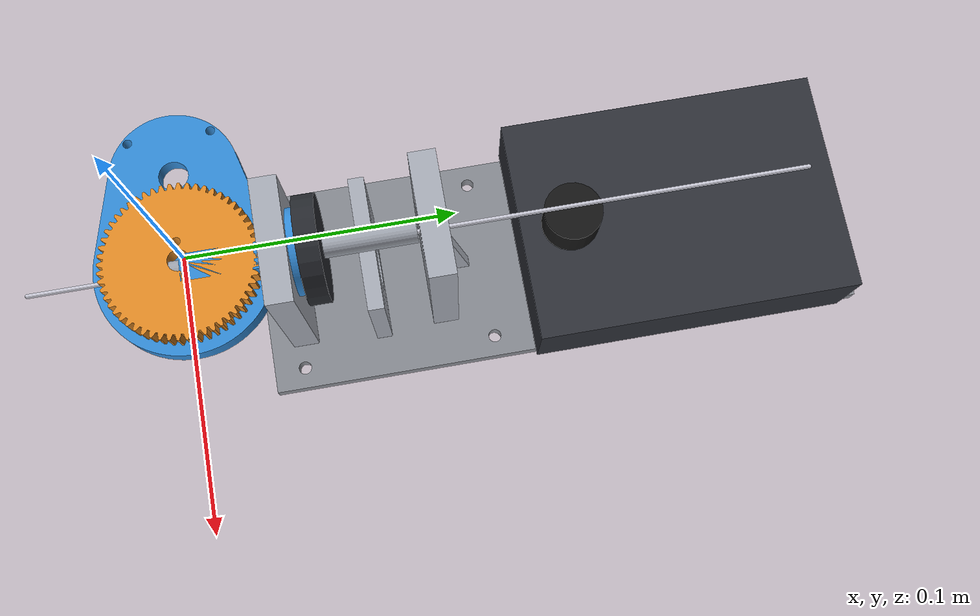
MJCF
<mujoco model="wirebender">
  <!-- Generated by sim/make_mjcf.py. Bending head = real meshes; rest = rough primitives. -->
  <compiler angle="degree" meshdir="meshes" autolimits="true" inertiafromgeom="true"/>
  <option gravity="0 0 0" integrator="implicitfast"/>

  <visual>
    <global offwidth="1280" offheight="960" azimuth="120" elevation="-20"/>
    <quality shadowsize="2048"/>
    <headlight diffuse="0.6 0.6 0.6" ambient="0.4 0.4 0.4"/>
  </visual>
  <statistic center="0.00635 0.1925 0.0055" extent="0.25"/>

  <default>
    <joint damping="0.5"/>
    <position kp="8" forcerange="-80 80"/>
    <!-- collisions off: kinematic visualization -->
    <geom density="1000" contype="0" conaffinity="0"/>
  </default>

  <asset>
    <texture type="skybox" builtin="gradient" rgb1="0.25 0.3 0.4" rgb2="0.05 0.06 0.1"
             width="512" height="512"/>
    <texture name="grid" type="2d" builtin="checker" rgb1="0.2 0.2 0.2" rgb2="0.3 0.3 0.3"
             width="512" height="512"/>
    <material name="grid" texture="grid" texrepeat="10 10" reflectance="0.1"/>
    <mesh name="motor" file="motor.stl" scale="0.001 0.001 0.001"/>
    <mesh name="bender-head" file="bender-head.stl" scale="0.001 0.001 0.001"/>
    <mesh name="motor-flange" file="motor-flange.stl" scale="0.001 0.001 0.001"/>
    <mesh name="bracket" file="bracket.stl" scale="0.001 0.001 0.001"/>
    <mesh name="head" file="head.stl" scale="0.001 0.001 0.001"/>
    <mesh name="bend_gear" file="bend_gear.stl" scale="0.001 0.001 0.001"/>
  </asset>

  <worldbody>
    <light pos="0.2 0.1 0.5" dir="-0.3 -0.1 -1" diffuse="0.9 0.9 0.9"/>
    <geom name="floor" type="plane" size="1 1 0.05" pos="0 0.1925 -0.044"
          material="grid" contype="1" conaffinity="1"/>

    <!-- ───────── static frame / decoration ───────── -->
    <body name="frame">
      <!-- printed base/bracket (base-bracket.scad) -->
      <geom type="mesh" mesh="bracket" pos="0.00635 0.035 -0.0445" quat="0.707107 0 0 0.707107" rgba="0.66 0.68 0.72 1"/>
      <!-- feeder body (1KGSSJ-B): flat on the base -->
      <geom type="box" pos="0.00635 0.185 -0.0295" size="0.0425 0.061 0.015" rgba="0.18 0.19 0.22 1"/>
      <!-- feeder motor dropping ~48mm through the base pocket -->
      <geom type="cylinder" fromto="0.00635 0.20525 -0.0445 0.00635 0.20525 -0.0925" size="0.0265" rgba="0.25 0.27 0.30 1"/>
      <!-- tension knob over the top -->
      <geom type="cylinder" fromto="0.00635 0.143 -0.0145 0.00635 0.143 -0.0005" size="0.011" rgba="0.08 0.08 0.08 1"/>
    </body>

    <!-- ───────── Axis 1: wire feed (slide along Y) ───────── -->
    <body name="wire" pos="0.00635 0 0.0055">
      <joint name="feed" type="slide" axis="0 1 0" range="-0.12 0.04"/>
      <geom type="capsule" fromto="0 -0.055 0  0 0.23 0"
            size="0.000815" rgba="0.80 0.80 0.85 1"/>
    </body>

    <!-- ───────── Axis 2: feed-tube rotation (bend direction) ───────── -->
    <body name="tube" pos="0 0 0">
      <joint name="tube_rot" type="hinge" axis="0 1 0" pos="0.00635 0 0.0055"
             range="-90 90"/>
      <!-- feed tube -->
      <geom type="cylinder" fromto="0.00635 -0.01 0.0055 0.00635 0.085 0.0055" size="0.004" rgba="0.62 0.64 0.68 1"/>
      <!-- drive pulley -->
      <geom type="cylinder" fromto="0.00635 0.043 0.0055 0.00635 0.051 0.0055" size="0.02" rgba="0.15 0.16 0.18 1"/>
      <!-- bending head housing (head.scad) -->
      <geom type="mesh" mesh="head" pos="0.00635 0 -0.0075" quat="0 0 0 1" rgba="0.20 0.55 0.85 1"/>

      <!-- ───────── Axis 3: bend head ───────── -->
      <body name="bend_flange" pos="0 0 0">
        <joint name="bend" type="hinge" axis="0 0 1" pos="0.00355 0 0.0055"
               range="0 150"/>
        <geom type="mesh" mesh="bend_gear" pos="0.00355 0 0.0015" quat="0 0 0 1" rgba="0.90 0.55 0.15 1"/>
      </body>
    </body>
  </worldbody>

  <actuator>
    <position name="feed"     joint="feed"     ctrlrange="-0.12 0.04" kp="200"/>
    <position name="tube_rot" joint="tube_rot" ctrlrange="-90 90"/>
    <position name="bend"     joint="bend"     ctrlrange="0 150"/>
  </actuator>
</mujoco>
